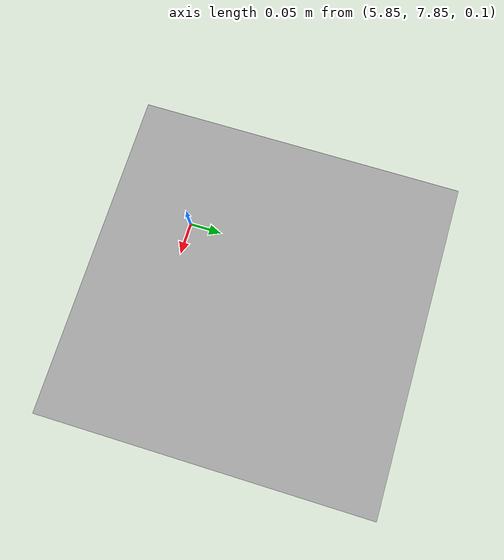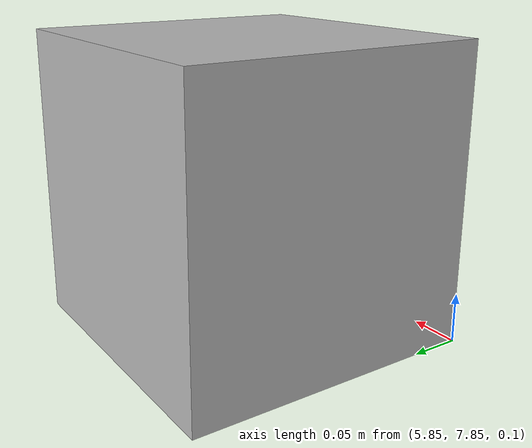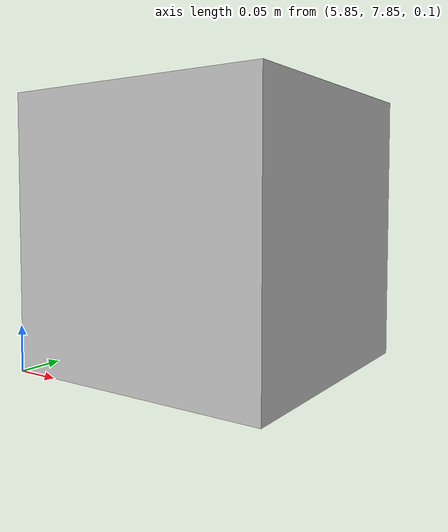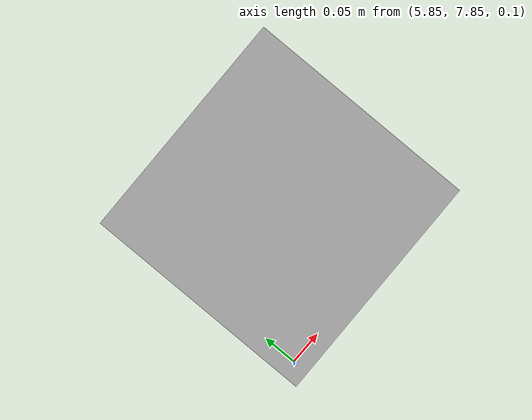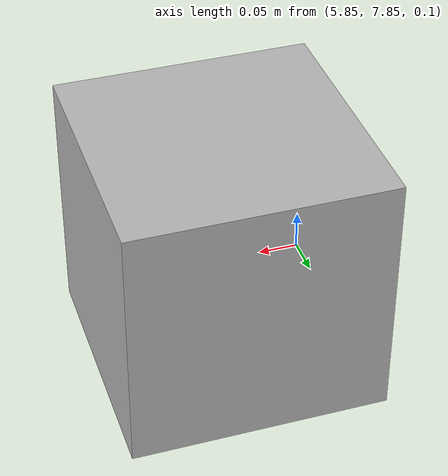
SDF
<?xml version="1.0"?>
<sdf version="1.5">
    <model name="4cube">
        <static>true</static>
        <link name="link">

             <collision name="collision4">
                <pose>6 8 0.1 0 0 0</pose>
                <geometry>
                    <mesh>
                        <uri>model://4cube/meshes/cube.dae</uri>
                    </mesh>
                </geometry>
            </collision>
            <visual name="visual4">

              <pose>6 8 0.1 0 0 0</pose>
              <geometry>
              <mesh>
                 <uri>model://4cube/meshes/cube_green.dae</uri>
              </mesh>
              </geometry>

              <material>
                  <script>
                      <uri>model://4cube/materials/scripts</uri>
                      <uri>model://4cube/materials/textures</uri>
                      <name>cubeMat/Diffuse</name>
                  </script>
              </material>
             </visual>

        </link>
    </model>
</sdf>
